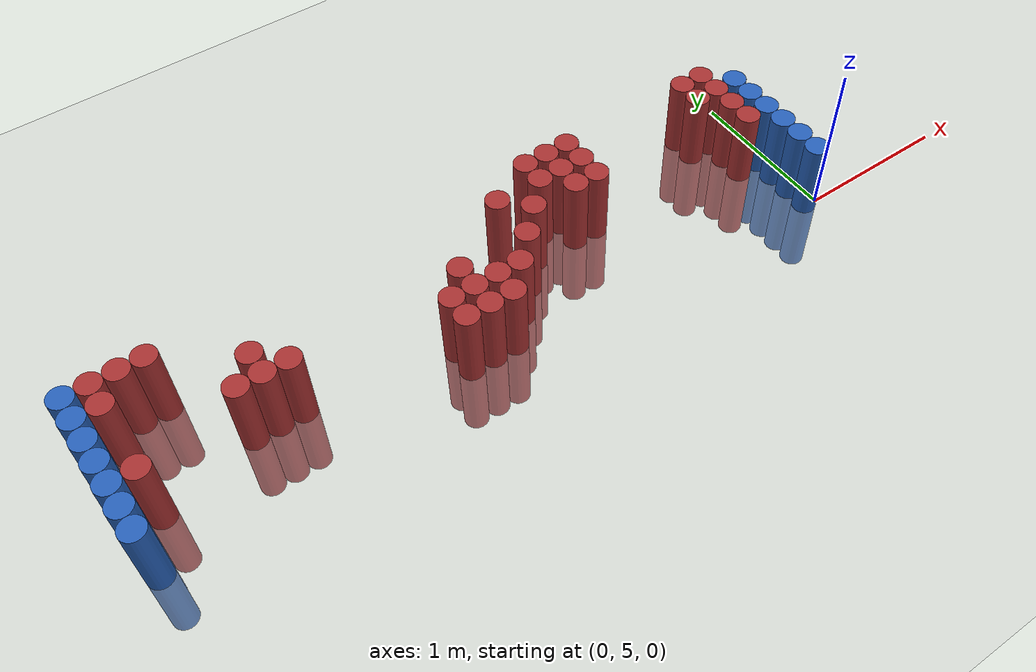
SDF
<sdf version="1.6">
 <world name="default">
  <model name="ground_plane">
   <static>1</static>
   <link name="link">
    <collision name="collision">
     <geometry><plane><normal>0 0 1</normal><size>100 100</size></plane></geometry>
     <surface><friction><ode><mu>100</mu><mu2>50</mu2></ode></friction></surface>
    </collision>
    <visual name="visual">
     <cast_shadows>0</cast_shadows>
     <geometry><plane><normal>0 0 1</normal><size>100 100</size></plane></geometry>
     <material>
      <script><uri>file://media/materials/scripts/gazebo.material</uri><name>Gazebo/Grey</name></script>
     </material>
    </visual>
   </link>
  </model>
  <model name="unit_cylinder_94">
   <static>1</static>
   <pose>-0.075000 5.025000 0.000000 0.000000 0.000000 0.000000</pose>
   <link name="link">
    <inertial>
     <mass>1</mass>
     <inertia><ixx>0.145833</ixx><ixy>0</ixy><ixz>0</ixz><iyy>0.145833</iyy><iyz>0</iyz><izz>0.125</izz></inertia>
    </inertial>
    <collision name="collision">
     <geometry><cylinder><radius>0.075000</radius><length>1</length></cylinder></geometry>
    </collision>
    <visual name="visual">
     <geometry><cylinder><radius>0.075000</radius><length>1</length></cylinder></geometry>
     <material>
      <ambient>0.152000 0.379000 0.720000 1</ambient>
      <diffuse>0.152000 0.379000 0.720000 1</diffuse>
     </material>
     <material>
      <script><name>Gazebo/Grey</name><uri>file://media/materials/scripts/gazebo.material</uri></script>
     </material>
    </visual>
   </link>
  </model>
  <model name="unit_cylinder_95">
   <static>1</static>
   <pose>-4.425000 5.025000 0.000000 0.000000 0.000000 0.000000</pose>
   <link name="link">
    <inertial>
     <mass>1</mass>
     <inertia><ixx>0.145833</ixx><ixy>0</ixy><ixz>0</ixz><iyy>0.145833</iyy><iyz>0</iyz><izz>0.125</izz></inertia>
    </inertial>
    <collision name="collision">
     <geometry><cylinder><radius>0.075000</radius><length>1</length></cylinder></geometry>
    </collision>
    <visual name="visual">
     <geometry><cylinder><radius>0.075000</radius><length>1</length></cylinder></geometry>
     <material>
      <ambient>0.152000 0.379000 0.720000 1</ambient>
      <diffuse>0.152000 0.379000 0.720000 1</diffuse>
     </material>
     <material>
      <script><name>Gazebo/Grey</name><uri>file://media/materials/scripts/gazebo.material</uri></script>
     </material>
    </visual>
   </link>
  </model>
  <model name="unit_cylinder_96">
   <static>1</static>
   <pose>-4.425000 5.175000 0.000000 0.000000 0.000000 0.000000</pose>
   <link name="link">
    <inertial>
     <mass>1</mass>
     <inertia><ixx>0.145833</ixx><ixy>0</ixy><ixz>0</ixz><iyy>0.145833</iyy><iyz>0</iyz><izz>0.125</izz></inertia>
    </inertial>
    <collision name="collision">
     <geometry><cylinder><radius>0.075000</radius><length>1</length></cylinder></geometry>
    </collision>
    <visual name="visual">
     <geometry><cylinder><radius>0.075000</radius><length>1</length></cylinder></geometry>
     <material>
      <ambient>0.152000 0.379000 0.720000 1</ambient>
      <diffuse>0.152000 0.379000 0.720000 1</diffuse>
     </material>
     <material>
      <script><name>Gazebo/Grey</name><uri>file://media/materials/scripts/gazebo.material</uri></script>
     </material>
    </visual>
   </link>
  </model>
  <model name="unit_cylinder_97">
   <static>1</static>
   <pose>-4.425000 5.325000 0.000000 0.000000 0.000000 0.000000</pose>
   <link name="link">
    <inertial>
     <mass>1</mass>
     <inertia><ixx>0.145833</ixx><ixy>0</ixy><ixz>0</ixz><iyy>0.145833</iyy><iyz>0</iyz><izz>0.125</izz></inertia>
    </inertial>
    <collision name="collision">
     <geometry><cylinder><radius>0.075000</radius><length>1</length></cylinder></geometry>
    </collision>
    <visual name="visual">
     <geometry><cylinder><radius>0.075000</radius><length>1</length></cylinder></geometry>
     <material>
      <ambient>0.152000 0.379000 0.720000 1</ambient>
      <diffuse>0.152000 0.379000 0.720000 1</diffuse>
     </material>
     <material>
      <script><name>Gazebo/Grey</name><uri>file://media/materials/scripts/gazebo.material</uri></script>
     </material>
    </visual>
   </link>
  </model>
  <model name="unit_cylinder_98">
   <static>1</static>
   <pose>-4.425000 5.475000 0.000000 0.000000 0.000000 0.000000</pose>
   <link name="link">
    <inertial>
     <mass>1</mass>
     <inertia><ixx>0.145833</ixx><ixy>0</ixy><ixz>0</ixz><iyy>0.145833</iyy><iyz>0</iyz><izz>0.125</izz></inertia>
    </inertial>
    <collision name="collision">
     <geometry><cylinder><radius>0.075000</radius><length>1</length></cylinder></geometry>
    </collision>
    <visual name="visual">
     <geometry><cylinder><radius>0.075000</radius><length>1</length></cylinder></geometry>
     <material>
      <ambient>0.152000 0.379000 0.720000 1</ambient>
      <diffuse>0.152000 0.379000 0.720000 1</diffuse>
     </material>
     <material>
      <script><name>Gazebo/Grey</name><uri>file://media/materials/scripts/gazebo.material</uri></script>
     </material>
    </visual>
   </link>
  </model>
  <model name="unit_cylinder_99">
   <static>1</static>
   <pose>-4.425000 5.625000 0.000000 0.000000 0.000000 0.000000</pose>
   <link name="link">
    <inertial>
     <mass>1</mass>
     <inertia><ixx>0.145833</ixx><ixy>0</ixy><ixz>0</ixz><iyy>0.145833</iyy><iyz>0</iyz><izz>0.125</izz></inertia>
    </inertial>
    <collision name="collision">
     <geometry><cylinder><radius>0.075000</radius><length>1</length></cylinder></geometry>
    </collision>
    <visual name="visual">
     <geometry><cylinder><radius>0.075000</radius><length>1</length></cylinder></geometry>
     <material>
      <ambient>0.152000 0.379000 0.720000 1</ambient>
      <diffuse>0.152000 0.379000 0.720000 1</diffuse>
     </material>
     <material>
      <script><name>Gazebo/Grey</name><uri>file://media/materials/scripts/gazebo.material</uri></script>
     </material>
    </visual>
   </link>
  </model>
  <model name="unit_cylinder_100">
   <static>1</static>
   <pose>-4.425000 5.775000 0.000000 0.000000 0.000000 0.000000</pose>
   <link name="link">
    <inertial>
     <mass>1</mass>
     <inertia><ixx>0.145833</ixx><ixy>0</ixy><ixz>0</ixz><iyy>0.145833</iyy><iyz>0</iyz><izz>0.125</izz></inertia>
    </inertial>
    <collision name="collision">
     <geometry><cylinder><radius>0.075000</radius><length>1</length></cylinder></geometry>
    </collision>
    <visual name="visual">
     <geometry><cylinder><radius>0.075000</radius><length>1</length></cylinder></geometry>
     <material>
      <ambient>0.152000 0.379000 0.720000 1</ambient>
      <diffuse>0.152000 0.379000 0.720000 1</diffuse>
     </material>
     <material>
      <script><name>Gazebo/Grey</name><uri>file://media/materials/scripts/gazebo.material</uri></script>
     </material>
    </visual>
   </link>
  </model>
  <model name="unit_cylinder_101">
   <static>1</static>
   <pose>-4.425000 5.925000 0.000000 0.000000 0.000000 0.000000</pose>
   <link name="link">
    <inertial>
     <mass>1</mass>
     <inertia><ixx>0.145833</ixx><ixy>0</ixy><ixz>0</ixz><iyy>0.145833</iyy><iyz>0</iyz><izz>0.125</izz></inertia>
    </inertial>
    <collision name="collision">
     <geometry><cylinder><radius>0.075000</radius><length>1</length></cylinder></geometry>
    </collision>
    <visual name="visual">
     <geometry><cylinder><radius>0.075000</radius><length>1</length></cylinder></geometry>
     <material>
      <ambient>0.152000 0.379000 0.720000 1</ambient>
      <diffuse>0.152000 0.379000 0.720000 1</diffuse>
     </material>
     <material>
      <script><name>Gazebo/Grey</name><uri>file://media/materials/scripts/gazebo.material</uri></script>
     </material>
    </visual>
   </link>
  </model>
  <model name="unit_cylinder_126">
   <static>1</static>
   <pose>-4.275000 5.325000 0.000000 0.000000 0.000000 0.000000</pose>
   <link name="link">
    <inertial>
     <mass>1</mass>
     <inertia><ixx>0.145833</ixx><ixy>0</ixy><ixz>0</ixz><iyy>0.145833</iyy><iyz>0</iyz><izz>0.125</izz></inertia>
    </inertial>
    <collision name="collision">
     <geometry><cylinder><radius>0.075000</radius><length>1</length></cylinder></geometry>
    </collision>
    <visual name="visual">
     <geometry><cylinder><radius>0.075000</radius><length>1</length></cylinder></geometry>
     <material>
      <ambient>0.648000 0.192000 0.192000 1</ambient>
      <diffuse>0.648000 0.192000 0.192000 1</diffuse>
     </material>
     <material>
      <script><name>Gazebo/Grey</name><uri>file://media/materials/scripts/gazebo.material</uri></script>
     </material>
    </visual>
   </link>
  </model>
  <model name="unit_cylinder_127">
   <static>1</static>
   <pose>-4.275000 5.775000 0.000000 0.000000 0.000000 0.000000</pose>
   <link name="link">
    <inertial>
     <mass>1</mass>
     <inertia><ixx>0.145833</ixx><ixy>0</ixy><ixz>0</ixz><iyy>0.145833</iyy><iyz>0</iyz><izz>0.125</izz></inertia>
    </inertial>
    <collision name="collision">
     <geometry><cylinder><radius>0.075000</radius><length>1</length></cylinder></geometry>
    </collision>
    <visual name="visual">
     <geometry><cylinder><radius>0.075000</radius><length>1</length></cylinder></geometry>
     <material>
      <ambient>0.648000 0.192000 0.192000 1</ambient>
      <diffuse>0.648000 0.192000 0.192000 1</diffuse>
     </material>
     <material>
      <script><name>Gazebo/Grey</name><uri>file://media/materials/scripts/gazebo.material</uri></script>
     </material>
    </visual>
   </link>
  </model>
  <model name="unit_cylinder_128">
   <static>1</static>
   <pose>-4.275000 5.925000 0.000000 0.000000 0.000000 0.000000</pose>
   <link name="link">
    <inertial>
     <mass>1</mass>
     <inertia><ixx>0.145833</ixx><ixy>0</ixy><ixz>0</ixz><iyy>0.145833</iyy><iyz>0</iyz><izz>0.125</izz></inertia>
    </inertial>
    <collision name="collision">
     <geometry><cylinder><radius>0.075000</radius><length>1</length></cylinder></geometry>
    </collision>
    <visual name="visual">
     <geometry><cylinder><radius>0.075000</radius><length>1</length></cylinder></geometry>
     <material>
      <ambient>0.648000 0.192000 0.192000 1</ambient>
      <diffuse>0.648000 0.192000 0.192000 1</diffuse>
     </material>
     <material>
      <script><name>Gazebo/Grey</name><uri>file://media/materials/scripts/gazebo.material</uri></script>
     </material>
    </visual>
   </link>
  </model>
  <model name="unit_cylinder_137">
   <static>1</static>
   <pose>-4.125000 5.925000 0.000000 0.000000 0.000000 0.000000</pose>
   <link name="link">
    <inertial>
     <mass>1</mass>
     <inertia><ixx>0.145833</ixx><ixy>0</ixy><ixz>0</ixz><iyy>0.145833</iyy><iyz>0</iyz><izz>0.125</izz></inertia>
    </inertial>
    <collision name="collision">
     <geometry><cylinder><radius>0.075000</radius><length>1</length></cylinder></geometry>
    </collision>
    <visual name="visual">
     <geometry><cylinder><radius>0.075000</radius><length>1</length></cylinder></geometry>
     <material>
      <ambient>0.648000 0.192000 0.192000 1</ambient>
      <diffuse>0.648000 0.192000 0.192000 1</diffuse>
     </material>
     <material>
      <script><name>Gazebo/Grey</name><uri>file://media/materials/scripts/gazebo.material</uri></script>
     </material>
    </visual>
   </link>
  </model>
  <model name="unit_cylinder_141">
   <static>1</static>
   <pose>-3.975000 5.925000 0.000000 0.000000 0.000000 0.000000</pose>
   <link name="link">
    <inertial>
     <mass>1</mass>
     <inertia><ixx>0.145833</ixx><ixy>0</ixy><ixz>0</ixz><iyy>0.145833</iyy><iyz>0</iyz><izz>0.125</izz></inertia>
    </inertial>
    <collision name="collision">
     <geometry><cylinder><radius>0.075000</radius><length>1</length></cylinder></geometry>
    </collision>
    <visual name="visual">
     <geometry><cylinder><radius>0.075000</radius><length>1</length></cylinder></geometry>
     <material>
      <ambient>0.648000 0.192000 0.192000 1</ambient>
      <diffuse>0.648000 0.192000 0.192000 1</diffuse>
     </material>
     <material>
      <script><name>Gazebo/Grey</name><uri>file://media/materials/scripts/gazebo.material</uri></script>
     </material>
    </visual>
   </link>
  </model>
  <model name="unit_cylinder_146">
   <static>1</static>
   <pose>-3.675000 5.475000 0.000000 0.000000 0.000000 0.000000</pose>
   <link name="link">
    <inertial>
     <mass>1</mass>
     <inertia><ixx>0.145833</ixx><ixy>0</ixy><ixz>0</ixz><iyy>0.145833</iyy><iyz>0</iyz><izz>0.125</izz></inertia>
    </inertial>
    <collision name="collision">
     <geometry><cylinder><radius>0.075000</radius><length>1</length></cylinder></geometry>
    </collision>
    <visual name="visual">
     <geometry><cylinder><radius>0.075000</radius><length>1</length></cylinder></geometry>
     <material>
      <ambient>0.648000 0.192000 0.192000 1</ambient>
      <diffuse>0.648000 0.192000 0.192000 1</diffuse>
     </material>
     <material>
      <script><name>Gazebo/Grey</name><uri>file://media/materials/scripts/gazebo.material</uri></script>
     </material>
    </visual>
   </link>
  </model>
  <model name="unit_cylinder_147">
   <static>1</static>
   <pose>-3.525000 5.475000 0.000000 0.000000 0.000000 0.000000</pose>
   <link name="link">
    <inertial>
     <mass>1</mass>
     <inertia><ixx>0.145833</ixx><ixy>0</ixy><ixz>0</ixz><iyy>0.145833</iyy><iyz>0</iyz><izz>0.125</izz></inertia>
    </inertial>
    <collision name="collision">
     <geometry><cylinder><radius>0.075000</radius><length>1</length></cylinder></geometry>
    </collision>
    <visual name="visual">
     <geometry><cylinder><radius>0.075000</radius><length>1</length></cylinder></geometry>
     <material>
      <ambient>0.648000 0.192000 0.192000 1</ambient>
      <diffuse>0.648000 0.192000 0.192000 1</diffuse>
     </material>
     <material>
      <script><name>Gazebo/Grey</name><uri>file://media/materials/scripts/gazebo.material</uri></script>
     </material>
    </visual>
   </link>
  </model>
  <model name="unit_cylinder_148">
   <static>1</static>
   <pose>-3.525000 5.625000 0.000000 0.000000 0.000000 0.000000</pose>
   <link name="link">
    <inertial>
     <mass>1</mass>
     <inertia><ixx>0.145833</ixx><ixy>0</ixy><ixz>0</ixz><iyy>0.145833</iyy><iyz>0</iyz><izz>0.125</izz></inertia>
    </inertial>
    <collision name="collision">
     <geometry><cylinder><radius>0.075000</radius><length>1</length></cylinder></geometry>
    </collision>
    <visual name="visual">
     <geometry><cylinder><radius>0.075000</radius><length>1</length></cylinder></geometry>
     <material>
      <ambient>0.648000 0.192000 0.192000 1</ambient>
      <diffuse>0.648000 0.192000 0.192000 1</diffuse>
     </material>
     <material>
      <script><name>Gazebo/Grey</name><uri>file://media/materials/scripts/gazebo.material</uri></script>
     </material>
    </visual>
   </link>
  </model>
  <model name="unit_cylinder_149">
   <static>1</static>
   <pose>-3.375000 5.475000 0.000000 0.000000 0.000000 0.000000</pose>
   <link name="link">
    <inertial>
     <mass>1</mass>
     <inertia><ixx>0.145833</ixx><ixy>0</ixy><ixz>0</ixz><iyy>0.145833</iyy><iyz>0</iyz><izz>0.125</izz></inertia>
    </inertial>
    <collision name="collision">
     <geometry><cylinder><radius>0.075000</radius><length>1</length></cylinder></geometry>
    </collision>
    <visual name="visual">
     <geometry><cylinder><radius>0.075000</radius><length>1</length></cylinder></geometry>
     <material>
      <ambient>0.648000 0.192000 0.192000 1</ambient>
      <diffuse>0.648000 0.192000 0.192000 1</diffuse>
     </material>
     <material>
      <script><name>Gazebo/Grey</name><uri>file://media/materials/scripts/gazebo.material</uri></script>
     </material>
    </visual>
   </link>
  </model>
  <model name="unit_cylinder_155">
   <static>1</static>
   <pose>-2.475000 5.175000 0.000000 0.000000 0.000000 0.000000</pose>
   <link name="link">
    <inertial>
     <mass>1</mass>
     <inertia><ixx>0.145833</ixx><ixy>0</ixy><ixz>0</ixz><iyy>0.145833</iyy><iyz>0</iyz><izz>0.125</izz></inertia>
    </inertial>
    <collision name="collision">
     <geometry><cylinder><radius>0.075000</radius><length>1</length></cylinder></geometry>
    </collision>
    <visual name="visual">
     <geometry><cylinder><radius>0.075000</radius><length>1</length></cylinder></geometry>
     <material>
      <ambient>0.648000 0.192000 0.192000 1</ambient>
      <diffuse>0.648000 0.192000 0.192000 1</diffuse>
     </material>
     <material>
      <script><name>Gazebo/Grey</name><uri>file://media/materials/scripts/gazebo.material</uri></script>
     </material>
    </visual>
   </link>
  </model>
  <model name="unit_cylinder_156">
   <static>1</static>
   <pose>-2.475000 5.325000 0.000000 0.000000 0.000000 0.000000</pose>
   <link name="link">
    <inertial>
     <mass>1</mass>
     <inertia><ixx>0.145833</ixx><ixy>0</ixy><ixz>0</ixz><iyy>0.145833</iyy><iyz>0</iyz><izz>0.125</izz></inertia>
    </inertial>
    <collision name="collision">
     <geometry><cylinder><radius>0.075000</radius><length>1</length></cylinder></geometry>
    </collision>
    <visual name="visual">
     <geometry><cylinder><radius>0.075000</radius><length>1</length></cylinder></geometry>
     <material>
      <ambient>0.648000 0.192000 0.192000 1</ambient>
      <diffuse>0.648000 0.192000 0.192000 1</diffuse>
     </material>
     <material>
      <script><name>Gazebo/Grey</name><uri>file://media/materials/scripts/gazebo.material</uri></script>
     </material>
    </visual>
   </link>
  </model>
  <model name="unit_cylinder_157">
   <static>1</static>
   <pose>-2.325000 5.175000 0.000000 0.000000 0.000000 0.000000</pose>
   <link name="link">
    <inertial>
     <mass>1</mass>
     <inertia><ixx>0.145833</ixx><ixy>0</ixy><ixz>0</ixz><iyy>0.145833</iyy><iyz>0</iyz><izz>0.125</izz></inertia>
    </inertial>
    <collision name="collision">
     <geometry><cylinder><radius>0.075000</radius><length>1</length></cylinder></geometry>
    </collision>
    <visual name="visual">
     <geometry><cylinder><radius>0.075000</radius><length>1</length></cylinder></geometry>
     <material>
      <ambient>0.648000 0.192000 0.192000 1</ambient>
      <diffuse>0.648000 0.192000 0.192000 1</diffuse>
     </material>
     <material>
      <script><name>Gazebo/Grey</name><uri>file://media/materials/scripts/gazebo.material</uri></script>
     </material>
    </visual>
   </link>
  </model>
  <model name="unit_cylinder_158">
   <static>1</static>
   <pose>-2.325000 5.325000 0.000000 0.000000 0.000000 0.000000</pose>
   <link name="link">
    <inertial>
     <mass>1</mass>
     <inertia><ixx>0.145833</ixx><ixy>0</ixy><ixz>0</ixz><iyy>0.145833</iyy><iyz>0</iyz><izz>0.125</izz></inertia>
    </inertial>
    <collision name="collision">
     <geometry><cylinder><radius>0.075000</radius><length>1</length></cylinder></geometry>
    </collision>
    <visual name="visual">
     <geometry><cylinder><radius>0.075000</radius><length>1</length></cylinder></geometry>
     <material>
      <ambient>0.648000 0.192000 0.192000 1</ambient>
      <diffuse>0.648000 0.192000 0.192000 1</diffuse>
     </material>
     <material>
      <script><name>Gazebo/Grey</name><uri>file://media/materials/scripts/gazebo.material</uri></script>
     </material>
    </visual>
   </link>
  </model>
  <model name="unit_cylinder_159">
   <static>1</static>
   <pose>-2.325000 5.475000 0.000000 0.000000 0.000000 0.000000</pose>
   <link name="link">
    <inertial>
     <mass>1</mass>
     <inertia><ixx>0.145833</ixx><ixy>0</ixy><ixz>0</ixz><iyy>0.145833</iyy><iyz>0</iyz><izz>0.125</izz></inertia>
    </inertial>
    <collision name="collision">
     <geometry><cylinder><radius>0.075000</radius><length>1</length></cylinder></geometry>
    </collision>
    <visual name="visual">
     <geometry><cylinder><radius>0.075000</radius><length>1</length></cylinder></geometry>
     <material>
      <ambient>0.648000 0.192000 0.192000 1</ambient>
      <diffuse>0.648000 0.192000 0.192000 1</diffuse>
     </material>
     <material>
      <script><name>Gazebo/Grey</name><uri>file://media/materials/scripts/gazebo.material</uri></script>
     </material>
    </visual>
   </link>
  </model>
  <model name="unit_cylinder_160">
   <static>1</static>
   <pose>-2.175000 5.175000 0.000000 0.000000 0.000000 0.000000</pose>
   <link name="link">
    <inertial>
     <mass>1</mass>
     <inertia><ixx>0.145833</ixx><ixy>0</ixy><ixz>0</ixz><iyy>0.145833</iyy><iyz>0</iyz><izz>0.125</izz></inertia>
    </inertial>
    <collision name="collision">
     <geometry><cylinder><radius>0.075000</radius><length>1</length></cylinder></geometry>
    </collision>
    <visual name="visual">
     <geometry><cylinder><radius>0.075000</radius><length>1</length></cylinder></geometry>
     <material>
      <ambient>0.648000 0.192000 0.192000 1</ambient>
      <diffuse>0.648000 0.192000 0.192000 1</diffuse>
     </material>
     <material>
      <script><name>Gazebo/Grey</name><uri>file://media/materials/scripts/gazebo.material</uri></script>
     </material>
    </visual>
   </link>
  </model>
  <model name="unit_cylinder_161">
   <static>1</static>
   <pose>-2.175000 5.325000 0.000000 0.000000 0.000000 0.000000</pose>
   <link name="link">
    <inertial>
     <mass>1</mass>
     <inertia><ixx>0.145833</ixx><ixy>0</ixy><ixz>0</ixz><iyy>0.145833</iyy><iyz>0</iyz><izz>0.125</izz></inertia>
    </inertial>
    <collision name="collision">
     <geometry><cylinder><radius>0.075000</radius><length>1</length></cylinder></geometry>
    </collision>
    <visual name="visual">
     <geometry><cylinder><radius>0.075000</radius><length>1</length></cylinder></geometry>
     <material>
      <ambient>0.648000 0.192000 0.192000 1</ambient>
      <diffuse>0.648000 0.192000 0.192000 1</diffuse>
     </material>
     <material>
      <script><name>Gazebo/Grey</name><uri>file://media/materials/scripts/gazebo.material</uri></script>
     </material>
    </visual>
   </link>
  </model>
  <model name="unit_cylinder_162">
   <static>1</static>
   <pose>-2.025000 5.325000 0.000000 0.000000 0.000000 0.000000</pose>
   <link name="link">
    <inertial>
     <mass>1</mass>
     <inertia><ixx>0.145833</ixx><ixy>0</ixy><ixz>0</ixz><iyy>0.145833</iyy><iyz>0</iyz><izz>0.125</izz></inertia>
    </inertial>
    <collision name="collision">
     <geometry><cylinder><radius>0.075000</radius><length>1</length></cylinder></geometry>
    </collision>
    <visual name="visual">
     <geometry><cylinder><radius>0.075000</radius><length>1</length></cylinder></geometry>
     <material>
      <ambient>0.648000 0.192000 0.192000 1</ambient>
      <diffuse>0.648000 0.192000 0.192000 1</diffuse>
     </material>
     <material>
      <script><name>Gazebo/Grey</name><uri>file://media/materials/scripts/gazebo.material</uri></script>
     </material>
    </visual>
   </link>
  </model>
  <model name="unit_cylinder_163">
   <static>1</static>
   <pose>-1.875000 5.475000 0.000000 0.000000 0.000000 0.000000</pose>
   <link name="link">
    <inertial>
     <mass>1</mass>
     <inertia><ixx>0.145833</ixx><ixy>0</ixy><ixz>0</ixz><iyy>0.145833</iyy><iyz>0</iyz><izz>0.125</izz></inertia>
    </inertial>
    <collision name="collision">
     <geometry><cylinder><radius>0.075000</radius><length>1</length></cylinder></geometry>
    </collision>
    <visual name="visual">
     <geometry><cylinder><radius>0.075000</radius><length>1</length></cylinder></geometry>
     <material>
      <ambient>0.648000 0.192000 0.192000 1</ambient>
      <diffuse>0.648000 0.192000 0.192000 1</diffuse>
     </material>
     <material>
      <script><name>Gazebo/Grey</name><uri>file://media/materials/scripts/gazebo.material</uri></script>
     </material>
    </visual>
   </link>
  </model>
  <model name="unit_cylinder_164">
   <static>1</static>
   <pose>-1.875000 5.775000 0.000000 0.000000 0.000000 0.000000</pose>
   <link name="link">
    <inertial>
     <mass>1</mass>
     <inertia><ixx>0.145833</ixx><ixy>0</ixy><ixz>0</ixz><iyy>0.145833</iyy><iyz>0</iyz><izz>0.125</izz></inertia>
    </inertial>
    <collision name="collision">
     <geometry><cylinder><radius>0.075000</radius><length>1</length></cylinder></geometry>
    </collision>
    <visual name="visual">
     <geometry><cylinder><radius>0.075000</radius><length>1</length></cylinder></geometry>
     <material>
      <ambient>0.648000 0.192000 0.192000 1</ambient>
      <diffuse>0.648000 0.192000 0.192000 1</diffuse>
     </material>
     <material>
      <script><name>Gazebo/Grey</name><uri>file://media/materials/scripts/gazebo.material</uri></script>
     </material>
    </visual>
   </link>
  </model>
  <model name="unit_cylinder_167">
   <static>1</static>
   <pose>-1.725000 5.625000 0.000000 0.000000 0.000000 0.000000</pose>
   <link name="link">
    <inertial>
     <mass>1</mass>
     <inertia><ixx>0.145833</ixx><ixy>0</ixy><ixz>0</ixz><iyy>0.145833</iyy><iyz>0</iyz><izz>0.125</izz></inertia>
    </inertial>
    <collision name="collision">
     <geometry><cylinder><radius>0.075000</radius><length>1</length></cylinder></geometry>
    </collision>
    <visual name="visual">
     <geometry><cylinder><radius>0.075000</radius><length>1</length></cylinder></geometry>
     <material>
      <ambient>0.648000 0.192000 0.192000 1</ambient>
      <diffuse>0.648000 0.192000 0.192000 1</diffuse>
     </material>
     <material>
      <script><name>Gazebo/Grey</name><uri>file://media/materials/scripts/gazebo.material</uri></script>
     </material>
    </visual>
   </link>
  </model>
  <model name="unit_cylinder_170">
   <static>1</static>
   <pose>-1.575000 5.775000 0.000000 0.000000 0.000000 0.000000</pose>
   <link name="link">
    <inertial>
     <mass>1</mass>
     <inertia><ixx>0.145833</ixx><ixy>0</ixy><ixz>0</ixz><iyy>0.145833</iyy><iyz>0</iyz><izz>0.125</izz></inertia>
    </inertial>
    <collision name="collision">
     <geometry><cylinder><radius>0.075000</radius><length>1</length></cylinder></geometry>
    </collision>
    <visual name="visual">
     <geometry><cylinder><radius>0.075000</radius><length>1</length></cylinder></geometry>
     <material>
      <ambient>0.648000 0.192000 0.192000 1</ambient>
      <diffuse>0.648000 0.192000 0.192000 1</diffuse>
     </material>
     <material>
      <script><name>Gazebo/Grey</name><uri>file://media/materials/scripts/gazebo.material</uri></script>
     </material>
    </visual>
   </link>
  </model>
  <model name="unit_cylinder_171">
   <static>1</static>
   <pose>-1.575000 5.925000 0.000000 0.000000 0.000000 0.000000</pose>
   <link name="link">
    <inertial>
     <mass>1</mass>
     <inertia><ixx>0.145833</ixx><ixy>0</ixy><ixz>0</ixz><iyy>0.145833</iyy><iyz>0</iyz><izz>0.125</izz></inertia>
    </inertial>
    <collision name="collision">
     <geometry><cylinder><radius>0.075000</radius><length>1</length></cylinder></geometry>
    </collision>
    <visual name="visual">
     <geometry><cylinder><radius>0.075000</radius><length>1</length></cylinder></geometry>
     <material>
      <ambient>0.648000 0.192000 0.192000 1</ambient>
      <diffuse>0.648000 0.192000 0.192000 1</diffuse>
     </material>
     <material>
      <script><name>Gazebo/Grey</name><uri>file://media/materials/scripts/gazebo.material</uri></script>
     </material>
    </visual>
   </link>
  </model>
  <model name="unit_cylinder_174">
   <static>1</static>
   <pose>-1.425000 5.625000 0.000000 0.000000 0.000000 0.000000</pose>
   <link name="link">
    <inertial>
     <mass>1</mass>
     <inertia><ixx>0.145833</ixx><ixy>0</ixy><ixz>0</ixz><iyy>0.145833</iyy><iyz>0</iyz><izz>0.125</izz></inertia>
    </inertial>
    <collision name="collision">
     <geometry><cylinder><radius>0.075000</radius><length>1</length></cylinder></geometry>
    </collision>
    <visual name="visual">
     <geometry><cylinder><radius>0.075000</radius><length>1</length></cylinder></geometry>
     <material>
      <ambient>0.648000 0.192000 0.192000 1</ambient>
      <diffuse>0.648000 0.192000 0.192000 1</diffuse>
     </material>
     <material>
      <script><name>Gazebo/Grey</name><uri>file://media/materials/scripts/gazebo.material</uri></script>
     </material>
    </visual>
   </link>
  </model>
  <model name="unit_cylinder_175">
   <static>1</static>
   <pose>-1.425000 5.775000 0.000000 0.000000 0.000000 0.000000</pose>
   <link name="link">
    <inertial>
     <mass>1</mass>
     <inertia><ixx>0.145833</ixx><ixy>0</ixy><ixz>0</ixz><iyy>0.145833</iyy><iyz>0</iyz><izz>0.125</izz></inertia>
    </inertial>
    <collision name="collision">
     <geometry><cylinder><radius>0.075000</radius><length>1</length></cylinder></geometry>
    </collision>
    <visual name="visual">
     <geometry><cylinder><radius>0.075000</radius><length>1</length></cylinder></geometry>
     <material>
      <ambient>0.648000 0.192000 0.192000 1</ambient>
      <diffuse>0.648000 0.192000 0.192000 1</diffuse>
     </material>
     <material>
      <script><name>Gazebo/Grey</name><uri>file://media/materials/scripts/gazebo.material</uri></script>
     </material>
    </visual>
   </link>
  </model>
  <model name="unit_cylinder_176">
   <static>1</static>
   <pose>-1.425000 5.925000 0.000000 0.000000 0.000000 0.000000</pose>
   <link name="link">
    <inertial>
     <mass>1</mass>
     <inertia><ixx>0.145833</ixx><ixy>0</ixy><ixz>0</ixz><iyy>0.145833</iyy><iyz>0</iyz><izz>0.125</izz></inertia>
    </inertial>
    <collision name="collision">
     <geometry><cylinder><radius>0.075000</radius><length>1</length></cylinder></geometry>
    </collision>
    <visual name="visual">
     <geometry><cylinder><radius>0.075000</radius><length>1</length></cylinder></geometry>
     <material>
      <ambient>0.648000 0.192000 0.192000 1</ambient>
      <diffuse>0.648000 0.192000 0.192000 1</diffuse>
     </material>
     <material>
      <script><name>Gazebo/Grey</name><uri>file://media/materials/scripts/gazebo.material</uri></script>
     </material>
    </visual>
   </link>
  </model>
  <model name="unit_cylinder_179">
   <static>1</static>
   <pose>-1.275000 5.625000 0.000000 0.000000 0.000000 0.000000</pose>
   <link name="link">
    <inertial>
     <mass>1</mass>
     <inertia><ixx>0.145833</ixx><ixy>0</ixy><ixz>0</ixz><iyy>0.145833</iyy><iyz>0</iyz><izz>0.125</izz></inertia>
    </inertial>
    <collision name="collision">
     <geometry><cylinder><radius>0.075000</radius><length>1</length></cylinder></geometry>
    </collision>
    <visual name="visual">
     <geometry><cylinder><radius>0.075000</radius><length>1</length></cylinder></geometry>
     <material>
      <ambient>0.648000 0.192000 0.192000 1</ambient>
      <diffuse>0.648000 0.192000 0.192000 1</diffuse>
     </material>
     <material>
      <script><name>Gazebo/Grey</name><uri>file://media/materials/scripts/gazebo.material</uri></script>
     </material>
    </visual>
   </link>
  </model>
  <model name="unit_cylinder_180">
   <static>1</static>
   <pose>-1.275000 5.775000 0.000000 0.000000 0.000000 0.000000</pose>
   <link name="link">
    <inertial>
     <mass>1</mass>
     <inertia><ixx>0.145833</ixx><ixy>0</ixy><ixz>0</ixz><iyy>0.145833</iyy><iyz>0</iyz><izz>0.125</izz></inertia>
    </inertial>
    <collision name="collision">
     <geometry><cylinder><radius>0.075000</radius><length>1</length></cylinder></geometry>
    </collision>
    <visual name="visual">
     <geometry><cylinder><radius>0.075000</radius><length>1</length></cylinder></geometry>
     <material>
      <ambient>0.648000 0.192000 0.192000 1</ambient>
      <diffuse>0.648000 0.192000 0.192000 1</diffuse>
     </material>
     <material>
      <script><name>Gazebo/Grey</name><uri>file://media/materials/scripts/gazebo.material</uri></script>
     </material>
    </visual>
   </link>
  </model>
  <model name="unit_cylinder_181">
   <static>1</static>
   <pose>-1.275000 5.925000 0.000000 0.000000 0.000000 0.000000</pose>
   <link name="link">
    <inertial>
     <mass>1</mass>
     <inertia><ixx>0.145833</ixx><ixy>0</ixy><ixz>0</ixz><iyy>0.145833</iyy><iyz>0</iyz><izz>0.125</izz></inertia>
    </inertial>
    <collision name="collision">
     <geometry><cylinder><radius>0.075000</radius><length>1</length></cylinder></geometry>
    </collision>
    <visual name="visual">
     <geometry><cylinder><radius>0.075000</radius><length>1</length></cylinder></geometry>
     <material>
      <ambient>0.648000 0.192000 0.192000 1</ambient>
      <diffuse>0.648000 0.192000 0.192000 1</diffuse>
     </material>
     <material>
      <script><name>Gazebo/Grey</name><uri>file://media/materials/scripts/gazebo.material</uri></script>
     </material>
    </visual>
   </link>
  </model>
  <model name="unit_cylinder_184">
   <static>1</static>
   <pose>-0.375000 5.775000 0.000000 0.000000 0.000000 0.000000</pose>
   <link name="link">
    <inertial>
     <mass>1</mass>
     <inertia><ixx>0.145833</ixx><ixy>0</ixy><ixz>0</ixz><iyy>0.145833</iyy><iyz>0</iyz><izz>0.125</izz></inertia>
    </inertial>
    <collision name="collision">
     <geometry><cylinder><radius>0.075000</radius><length>1</length></cylinder></geometry>
    </collision>
    <visual name="visual">
     <geometry><cylinder><radius>0.075000</radius><length>1</length></cylinder></geometry>
     <material>
      <ambient>0.648000 0.192000 0.192000 1</ambient>
      <diffuse>0.648000 0.192000 0.192000 1</diffuse>
     </material>
     <material>
      <script><name>Gazebo/Grey</name><uri>file://media/materials/scripts/gazebo.material</uri></script>
     </material>
    </visual>
   </link>
  </model>
  <model name="unit_cylinder_185">
   <static>1</static>
   <pose>-0.375000 5.925000 0.000000 0.000000 0.000000 0.000000</pose>
   <link name="link">
    <inertial>
     <mass>1</mass>
     <inertia><ixx>0.145833</ixx><ixy>0</ixy><ixz>0</ixz><iyy>0.145833</iyy><iyz>0</iyz><izz>0.125</izz></inertia>
    </inertial>
    <collision name="collision">
     <geometry><cylinder><radius>0.075000</radius><length>1</length></cylinder></geometry>
    </collision>
    <visual name="visual">
     <geometry><cylinder><radius>0.075000</radius><length>1</length></cylinder></geometry>
     <material>
      <ambient>0.648000 0.192000 0.192000 1</ambient>
      <diffuse>0.648000 0.192000 0.192000 1</diffuse>
     </material>
     <material>
      <script><name>Gazebo/Grey</name><uri>file://media/materials/scripts/gazebo.material</uri></script>
     </material>
    </visual>
   </link>
  </model>
  <model name="unit_cylinder_188">
   <static>1</static>
   <pose>-0.225000 5.475000 0.000000 0.000000 0.000000 0.000000</pose>
   <link name="link">
    <inertial>
     <mass>1</mass>
     <inertia><ixx>0.145833</ixx><ixy>0</ixy><ixz>0</ixz><iyy>0.145833</iyy><iyz>0</iyz><izz>0.125</izz></inertia>
    </inertial>
    <collision name="collision">
     <geometry><cylinder><radius>0.075000</radius><length>1</length></cylinder></geometry>
    </collision>
    <visual name="visual">
     <geometry><cylinder><radius>0.075000</radius><length>1</length></cylinder></geometry>
     <material>
      <ambient>0.648000 0.192000 0.192000 1</ambient>
      <diffuse>0.648000 0.192000 0.192000 1</diffuse>
     </material>
     <material>
      <script><name>Gazebo/Grey</name><uri>file://media/materials/scripts/gazebo.material</uri></script>
     </material>
    </visual>
   </link>
  </model>
  <model name="unit_cylinder_189">
   <static>1</static>
   <pose>-0.225000 5.625000 0.000000 0.000000 0.000000 0.000000</pose>
   <link name="link">
    <inertial>
     <mass>1</mass>
     <inertia><ixx>0.145833</ixx><ixy>0</ixy><ixz>0</ixz><iyy>0.145833</iyy><iyz>0</iyz><izz>0.125</izz></inertia>
    </inertial>
    <collision name="collision">
     <geometry><cylinder><radius>0.075000</radius><length>1</length></cylinder></geometry>
    </collision>
    <visual name="visual">
     <geometry><cylinder><radius>0.075000</radius><length>1</length></cylinder></geometry>
     <material>
      <ambient>0.648000 0.192000 0.192000 1</ambient>
      <diffuse>0.648000 0.192000 0.192000 1</diffuse>
     </material>
     <material>
      <script><name>Gazebo/Grey</name><uri>file://media/materials/scripts/gazebo.material</uri></script>
     </material>
    </visual>
   </link>
  </model>
  <model name="unit_cylinder_190">
   <static>1</static>
   <pose>-0.225000 5.775000 0.000000 0.000000 0.000000 0.000000</pose>
   <link name="link">
    <inertial>
     <mass>1</mass>
     <inertia><ixx>0.145833</ixx><ixy>0</ixy><ixz>0</ixz><iyy>0.145833</iyy><iyz>0</iyz><izz>0.125</izz></inertia>
    </inertial>
    <collision name="collision">
     <geometry><cylinder><radius>0.075000</radius><length>1</length></cylinder></geometry>
    </collision>
    <visual name="visual">
     <geometry><cylinder><radius>0.075000</radius><length>1</length></cylinder></geometry>
     <material>
      <ambient>0.648000 0.192000 0.192000 1</ambient>
      <diffuse>0.648000 0.192000 0.192000 1</diffuse>
     </material>
     <material>
      <script><name>Gazebo/Grey</name><uri>file://media/materials/scripts/gazebo.material</uri></script>
     </material>
    </visual>
   </link>
  </model>
  <model name="unit_cylinder_191">
   <static>1</static>
   <pose>-0.225000 5.925000 0.000000 0.000000 0.000000 0.000000</pose>
   <link name="link">
    <inertial>
     <mass>1</mass>
     <inertia><ixx>0.145833</ixx><ixy>0</ixy><ixz>0</ixz><iyy>0.145833</iyy><iyz>0</iyz><izz>0.125</izz></inertia>
    </inertial>
    <collision name="collision">
     <geometry><cylinder><radius>0.075000</radius><length>1</length></cylinder></geometry>
    </collision>
    <visual name="visual">
     <geometry><cylinder><radius>0.075000</radius><length>1</length></cylinder></geometry>
     <material>
      <ambient>0.648000 0.192000 0.192000 1</ambient>
      <diffuse>0.648000 0.192000 0.192000 1</diffuse>
     </material>
     <material>
      <script><name>Gazebo/Grey</name><uri>file://media/materials/scripts/gazebo.material</uri></script>
     </material>
    </visual>
   </link>
  </model>
  <model name="unit_cylinder_205">
   <static>1</static>
   <pose>-0.075000 5.175000 0.000000 0.000000 0.000000 0.000000</pose>
   <link name="link">
    <inertial>
     <mass>1</mass>
     <inertia><ixx>0.145833</ixx><ixy>0</ixy><ixz>0</ixz><iyy>0.145833</iyy><iyz>0</iyz><izz>0.125</izz></inertia>
    </inertial>
    <collision name="collision">
     <geometry><cylinder><radius>0.075000</radius><length>1</length></cylinder></geometry>
    </collision>
    <visual name="visual">
     <geometry><cylinder><radius>0.075000</radius><length>1</length></cylinder></geometry>
     <material>
      <ambient>0.152000 0.379000 0.720000 1</ambient>
      <diffuse>0.152000 0.379000 0.720000 1</diffuse>
     </material>
     <material>
      <script><name>Gazebo/Grey</name><uri>file://media/materials/scripts/gazebo.material</uri></script>
     </material>
    </visual>
   </link>
  </model>
  <model name="unit_cylinder_206">
   <static>1</static>
   <pose>-0.075000 5.325000 0.000000 0.000000 0.000000 0.000000</pose>
   <link name="link">
    <inertial>
     <mass>1</mass>
     <inertia><ixx>0.145833</ixx><ixy>0</ixy><ixz>0</ixz><iyy>0.145833</iyy><iyz>0</iyz><izz>0.125</izz></inertia>
    </inertial>
    <collision name="collision">
     <geometry><cylinder><radius>0.075000</radius><length>1</length></cylinder></geometry>
    </collision>
    <visual name="visual">
     <geometry><cylinder><radius>0.075000</radius><length>1</length></cylinder></geometry>
     <material>
      <ambient>0.152000 0.379000 0.720000 1</ambient>
      <diffuse>0.152000 0.379000 0.720000 1</diffuse>
     </material>
     <material>
      <script><name>Gazebo/Grey</name><uri>file://media/materials/scripts/gazebo.material</uri></script>
     </material>
    </visual>
   </link>
  </model>
  <model name="unit_cylinder_207">
   <static>1</static>
   <pose>-0.075000 5.475000 0.000000 0.000000 0.000000 0.000000</pose>
   <link name="link">
    <inertial>
     <mass>1</mass>
     <inertia><ixx>0.145833</ixx><ixy>0</ixy><ixz>0</ixz><iyy>0.145833</iyy><iyz>0</iyz><izz>0.125</izz></inertia>
    </inertial>
    <collision name="collision">
     <geometry><cylinder><radius>0.075000</radius><length>1</length></cylinder></geometry>
    </collision>
    <visual name="visual">
     <geometry><cylinder><radius>0.075000</radius><length>1</length></cylinder></geometry>
     <material>
      <ambient>0.152000 0.379000 0.720000 1</ambient>
      <diffuse>0.152000 0.379000 0.720000 1</diffuse>
     </material>
     <material>
      <script><name>Gazebo/Grey</name><uri>file://media/materials/scripts/gazebo.material</uri></script>
     </material>
    </visual>
   </link>
  </model>
  <model name="unit_cylinder_208">
   <static>1</static>
   <pose>-0.075000 5.625000 0.000000 0.000000 0.000000 0.000000</pose>
   <link name="link">
    <inertial>
     <mass>1</mass>
     <inertia><ixx>0.145833</ixx><ixy>0</ixy><ixz>0</ixz><iyy>0.145833</iyy><iyz>0</iyz><izz>0.125</izz></inertia>
    </inertial>
    <collision name="collision">
     <geometry><cylinder><radius>0.075000</radius><length>1</length></cylinder></geometry>
    </collision>
    <visual name="visual">
     <geometry><cylinder><radius>0.075000</radius><length>1</length></cylinder></geometry>
     <material>
      <ambient>0.152000 0.379000 0.720000 1</ambient>
      <diffuse>0.152000 0.379000 0.720000 1</diffuse>
     </material>
     <material>
      <script><name>Gazebo/Grey</name><uri>file://media/materials/scripts/gazebo.material</uri></script>
     </material>
    </visual>
   </link>
  </model>
  <model name="unit_cylinder_209">
   <static>1</static>
   <pose>-0.075000 5.775000 0.000000 0.000000 0.000000 0.000000</pose>
   <link name="link">
    <inertial>
     <mass>1</mass>
     <inertia><ixx>0.145833</ixx><ixy>0</ixy><ixz>0</ixz><iyy>0.145833</iyy><iyz>0</iyz><izz>0.125</izz></inertia>
    </inertial>
    <collision name="collision">
     <geometry><cylinder><radius>0.075000</radius><length>1</length></cylinder></geometry>
    </collision>
    <visual name="visual">
     <geometry><cylinder><radius>0.075000</radius><length>1</length></cylinder></geometry>
     <material>
      <ambient>0.152000 0.379000 0.720000 1</ambient>
      <diffuse>0.152000 0.379000 0.720000 1</diffuse>
     </material>
     <material>
      <script><name>Gazebo/Grey</name><uri>file://media/materials/scripts/gazebo.material</uri></script>
     </material>
    </visual>
   </link>
  </model>
 </world>
</sdf>
